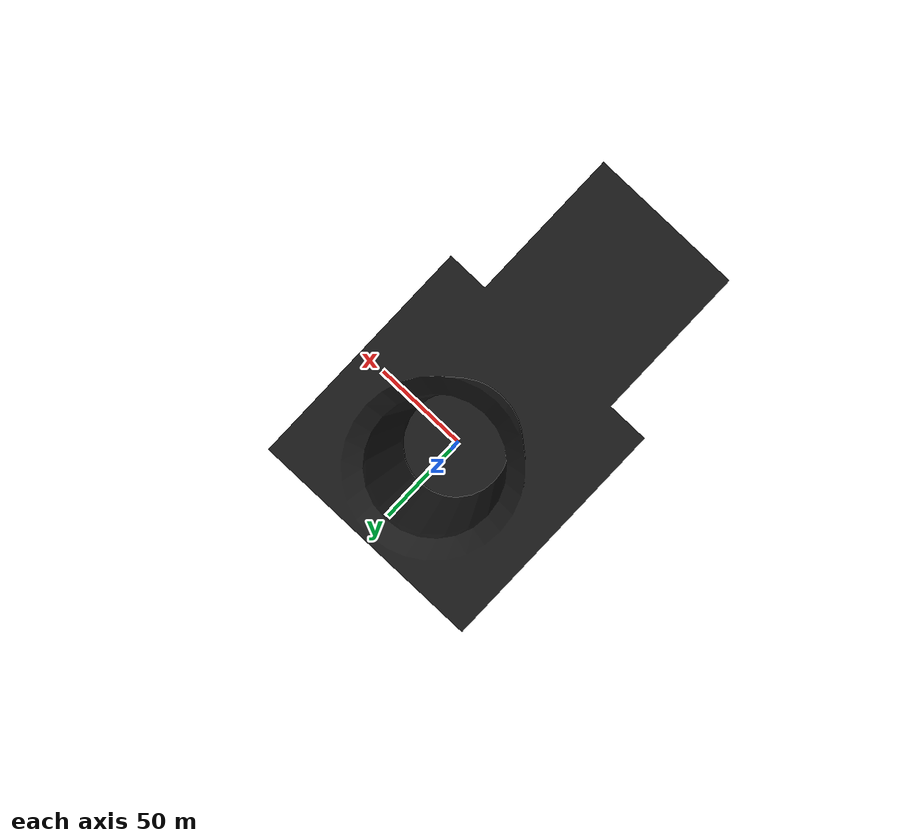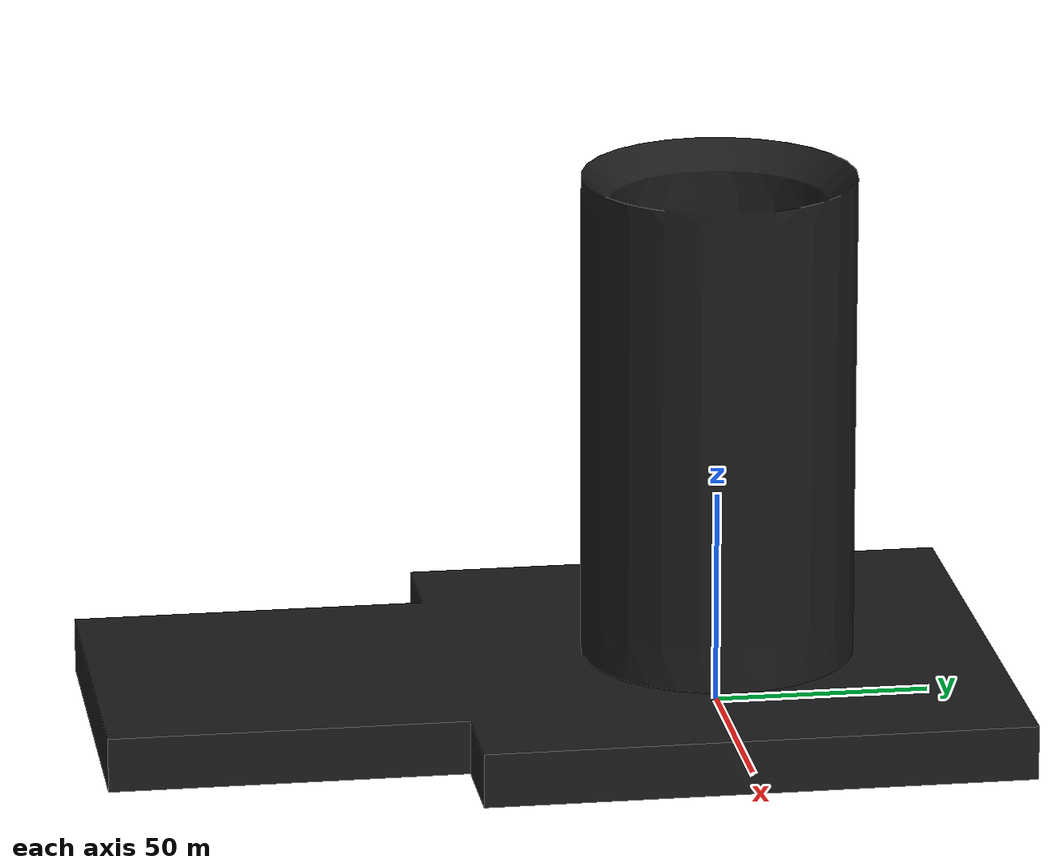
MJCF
<mujoco model="receptacle">
  <default>
    <default class="visual">
      <geom group="2" type="mesh" contype="0" conaffinity="0"/>
    </default>
    <default class="collision">
      <geom group="3" type="mesh"/>
    </default>
  </default>
  <asset>
    <material name="mtl_receptacle" specular="0.20000000000000004" shininess="1.0" rgba="0.10196078 0.10196078 0.10196078 1.0"/>
    <mesh file="receptacle.obj"/>
    <mesh file="receptacle_collision_0.obj"/>
    <mesh file="receptacle_collision_1.obj"/>
    <mesh file="receptacle_collision_2.obj"/>
    <mesh file="receptacle_collision_3.obj"/>
    <mesh file="receptacle_collision_4.obj"/>
    <mesh file="receptacle_collision_5.obj"/>
    <mesh file="receptacle_collision_6.obj"/>
    <mesh file="receptacle_collision_7.obj"/>
    <mesh file="receptacle_collision_8.obj"/>
    <mesh file="receptacle_collision_9.obj"/>
    <mesh file="receptacle_collision_10.obj"/>
    <mesh file="receptacle_collision_11.obj"/>
    <mesh file="receptacle_collision_12.obj"/>
    <mesh file="receptacle_collision_13.obj"/>
    <mesh file="receptacle_collision_14.obj"/>
    <mesh file="receptacle_collision_15.obj"/>
    <mesh file="receptacle_collision_16.obj"/>
    <mesh file="receptacle_collision_17.obj"/>
    <mesh file="receptacle_collision_18.obj"/>
    <mesh file="receptacle_collision_19.obj"/>
    <mesh file="receptacle_collision_20.obj"/>
    <mesh file="receptacle_collision_21.obj"/>
    <mesh file="receptacle_collision_22.obj"/>
    <mesh file="receptacle_collision_23.obj"/>
    <mesh file="receptacle_collision_24.obj"/>
    <mesh file="receptacle_collision_25.obj"/>
    <mesh file="receptacle_collision_26.obj"/>
    <mesh file="receptacle_collision_27.obj"/>
    <mesh file="receptacle_collision_28.obj"/>
    <mesh file="receptacle_collision_29.obj"/>
    <mesh file="receptacle_collision_30.obj"/>
    <mesh file="receptacle_collision_31.obj"/>
    <mesh file="receptacle_collision_32.obj"/>
    <mesh file="receptacle_collision_33.obj"/>
    <mesh file="receptacle_collision_34.obj"/>
    <mesh file="receptacle_collision_35.obj"/>
    <mesh file="receptacle_collision_36.obj"/>
    <mesh file="receptacle_collision_37.obj"/>
    <mesh file="receptacle_collision_38.obj"/>
  </asset>
  <worldbody>
    <body name="receptacle">
      <geom material="mtl_receptacle" mesh="receptacle" class="visual"/>
      <geom mesh="receptacle_collision_0" rgba="0.7126433425299251 0.8103875039745914 0.20728504190243546 1" class="collision"/>
      <geom mesh="receptacle_collision_1" rgba="0.5447145765896751 0.7127533379386324 0.36709345686196937 1" class="collision"/>
      <geom mesh="receptacle_collision_2" rgba="0.27149888294885194 0.08153187818360697 0.9802366498200998 1" class="collision"/>
      <geom mesh="receptacle_collision_3" rgba="0.7214255845290061 0.6980078965779867 0.06855905417493435 1" class="collision"/>
      <geom mesh="receptacle_collision_4" rgba="0.057452348652234586 0.43471851690813057 0.6978322271384013 1" class="collision"/>
      <geom mesh="receptacle_collision_5" rgba="0.16263998305687177 0.1668835407786674 0.48601914982955907 1" class="collision"/>
      <geom mesh="receptacle_collision_6" rgba="0.5222590931706146 0.16613085725174803 0.4903715879118956 1" class="collision"/>
      <geom mesh="receptacle_collision_7" rgba="0.817935784697221 0.8371713270094086 0.02709186638509742 1" class="collision"/>
      <geom mesh="receptacle_collision_8" rgba="0.7588837334322599 0.6889193890024621 0.941252020490863 1" class="collision"/>
      <geom mesh="receptacle_collision_9" rgba="0.5164904436591156 0.35274757903682563 0.1619255788071995 1" class="collision"/>
      <geom mesh="receptacle_collision_10" rgba="0.8439612149510451 0.3771233657619961 0.7580580898765227 1" class="collision"/>
      <geom mesh="receptacle_collision_11" rgba="0.5264774310782491 0.9454242307314268 0.46589931070228097 1" class="collision"/>
      <geom mesh="receptacle_collision_12" rgba="0.8360114882954797 0.1618422366167015 0.6151436388373532 1" class="collision"/>
      <geom mesh="receptacle_collision_13" rgba="0.29397072598188445 0.2546068950462408 0.4799458678166696 1" class="collision"/>
      <geom mesh="receptacle_collision_14" rgba="0.8810897025518686 0.5013164577503512 0.41924412691864976 1" class="collision"/>
      <geom mesh="receptacle_collision_15" rgba="0.22393204135243427 0.2644265820654633 0.6430934097486922 1" class="collision"/>
      <geom mesh="receptacle_collision_16" rgba="0.1922237592175613 0.6461554733727933 0.24707719685191154 1" class="collision"/>
      <geom mesh="receptacle_collision_17" rgba="0.629400857465486 0.330150304190002 0.09475380825446544 1" class="collision"/>
      <geom mesh="receptacle_collision_18" rgba="0.9407821731575545 0.3584048748163391 0.9063696248818006 1" class="collision"/>
      <geom mesh="receptacle_collision_19" rgba="0.04706700831949706 0.9334871866200739 0.0072564063666936685 1" class="collision"/>
      <geom mesh="receptacle_collision_20" rgba="0.3054167386911407 0.8122973808374933 0.604167780512027 1" class="collision"/>
      <geom mesh="receptacle_collision_21" rgba="0.7966177525576658 0.11101064142751427 0.27188529525990446 1" class="collision"/>
      <geom mesh="receptacle_collision_22" rgba="0.2943915774929764 0.35022381180155615 0.5822210935319148 1" class="collision"/>
      <geom mesh="receptacle_collision_23" rgba="0.749018378173546 0.8550153110212647 0.09712948991344561 1" class="collision"/>
      <geom mesh="receptacle_collision_24" rgba="0.1538384622993535 0.6060984554604627 0.7302263187758643 1" class="collision"/>
      <geom mesh="receptacle_collision_25" rgba="0.9063847395724021 0.273928249528544 0.4133105923133015 1" class="collision"/>
      <geom mesh="receptacle_collision_26" rgba="0.8350381977957841 0.12131015260838207 0.6291239933741143 1" class="collision"/>
      <geom mesh="receptacle_collision_27" rgba="0.4730192408653717 0.5357985310535911 0.3005533765106646 1" class="collision"/>
      <geom mesh="receptacle_collision_28" rgba="0.7013603059153694 0.509974757026605 0.4167488748009568 1" class="collision"/>
      <geom mesh="receptacle_collision_29" rgba="0.7061240550536864 0.1972181118200249 0.31746629638589263 1" class="collision"/>
      <geom mesh="receptacle_collision_30" rgba="0.35948841219963124 0.9319728488902524 0.3851687870007702 1" class="collision"/>
      <geom mesh="receptacle_collision_31" rgba="0.26220095818376343 0.2606015418822629 0.6651632762626061 1" class="collision"/>
      <geom mesh="receptacle_collision_32" rgba="0.3809310972918897 0.6124978403816426 0.7188272804388992 1" class="collision"/>
      <geom mesh="receptacle_collision_33" rgba="0.71523455223558 0.9696291493480783 0.8499797034815264 1" class="collision"/>
      <geom mesh="receptacle_collision_34" rgba="0.09412085330349262 0.8817443261758197 0.3090140644565227 1" class="collision"/>
      <geom mesh="receptacle_collision_35" rgba="0.49470648844889165 0.3121563948868763 0.3391381057378984 1" class="collision"/>
      <geom mesh="receptacle_collision_36" rgba="0.48665338613198894 0.8246647956907638 0.35537129197859496 1" class="collision"/>
      <geom mesh="receptacle_collision_37" rgba="0.9278071556859601 0.58287325590363 0.5588468988191188 1" class="collision"/>
      <geom mesh="receptacle_collision_38" rgba="0.4554245010910567 0.16505348441164014 0.42372971796018855 1" class="collision"/>
    </body>
  </worldbody>
</mujoco>
